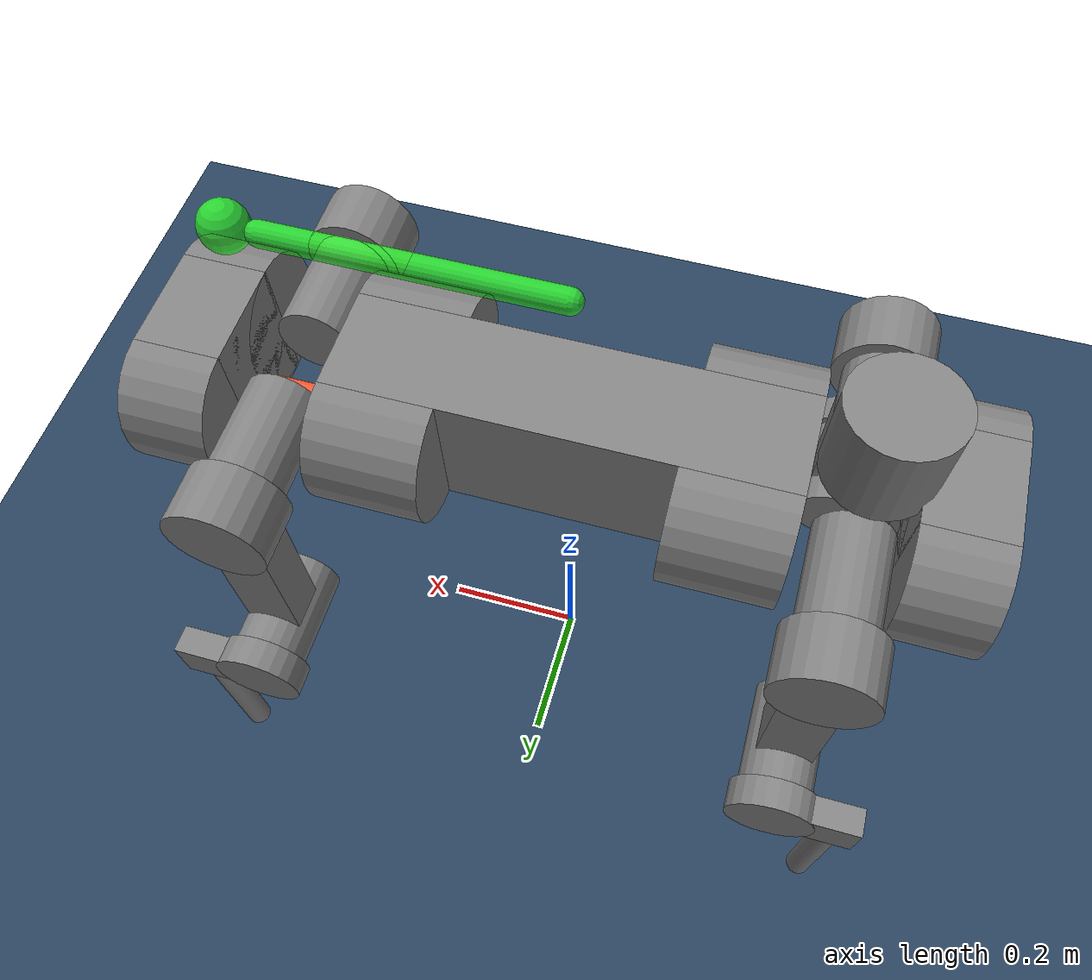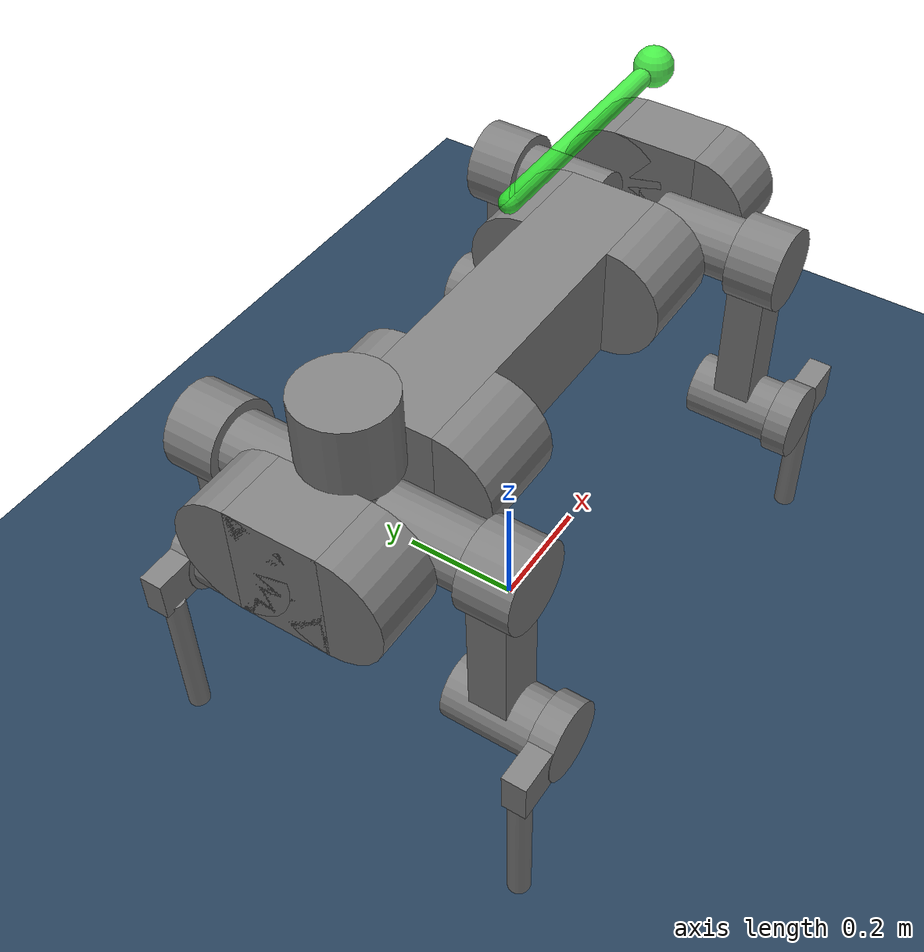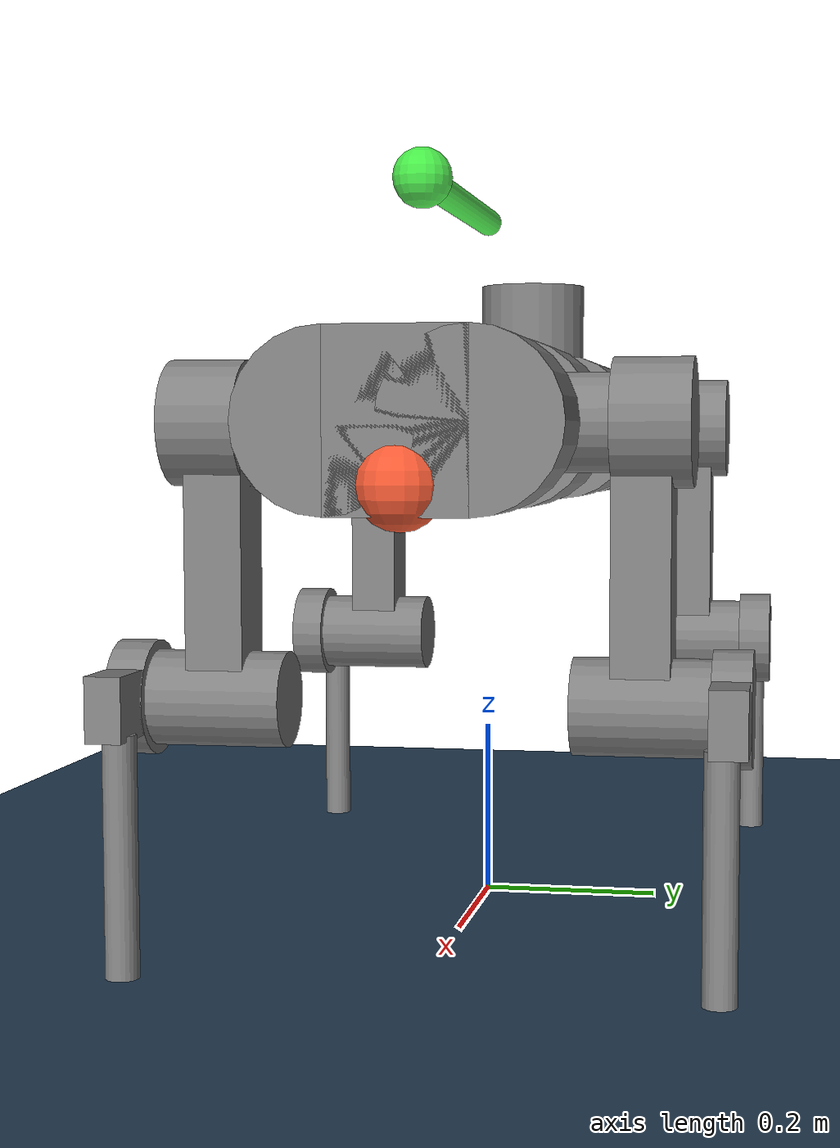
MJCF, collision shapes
<mujoco model="anymal_c_navigation_scene">
    <include file="anymal_c.xml"/>

    <option timestep="0.01" iterations="50" solver="Newton" tolerance="1e-10"/>

    <statistic center="0 0 0.5" extent="2"/>

    <visual>
        <headlight diffuse="0.6 0.6 0.6" ambient="0.3 0.3 0.3" specular="0 0 0"/>
        <rgba haze="0.15 0.25 0.35 1"/>
        <global azimuth="120" elevation="-20"/>
    </visual>

    <asset>
        <texture type="2d" name="groundplane" builtin="checker" mark="edge"
                 rgb1="0.2 0.3 0.4" rgb2="0.1 0.2 0.3" markrgb="0.8 0.8 0.8"
                 width="300" height="300"/>
        <material name="groundplane" texture="groundplane" texuniform="true" texrepeat="5 5" reflectance="0.2"/>
        <material name="target_arrow_mat" rgba="0.95 0.35 0.20 0.90"/>
        <material name="desired_arrow_mat" rgba="0.10 0.75 0.95 0.85"/>
        <material name="robot_arrow_mat" rgba="0.20 0.95 0.20 0.85"/>
    </asset>

    <worldbody>
        <light pos="0 0 1.5" dir="0 0 -1" directional="true" castshadow="false"/>

        <geom name="floor" size="0 0 0.05" type="plane" material="groundplane" friction="1 0.005 0.0001"/>

        <!-- Navigation target marker (mocap body updated by environment code) -->
        <body name="target_marker" mocap="true" pos="0 0 0.5">
            <geom type="capsule" fromto="0 0 0 0.45 0 0" size="0.020"
                  contype="0" conaffinity="0" material="target_arrow_mat"/>
            <geom type="sphere" pos="0.50 0 0" size="0.045"
                  contype="0" conaffinity="0" material="target_arrow_mat"/>
        </body>

        <!-- Robot current heading arrow (derived from actual XY velocity direction) -->
        <body name="robot_heading_arrow" mocap="true" pos="0 0 0.8">
            <geom type="capsule" fromto="0 0 0 0.35 0 0" size="0.015"
                  contype="0" conaffinity="0" material="robot_arrow_mat"/>
            <geom type="sphere" pos="0.39 0 0" size="0.030"
                  contype="0" conaffinity="0" material="robot_arrow_mat"/>
        </body>

        <!-- Desired heading arrow (derived from navigation controller command) -->
        <body name="desired_heading_arrow" mocap="true" pos="0 0 0.8">
            <geom type="capsule" fromto="0 0 0 0.35 0 0" size="0.012"
                  contype="0" conaffinity="0" material="desired_arrow_mat"/>
            <geom type="sphere" pos="0.39 0 0" size="0.028"
                  contype="0" conaffinity="0" material="desired_arrow_mat"/>
        </body>
    </worldbody>

</mujoco>

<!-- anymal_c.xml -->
<mujoco model="anymal_c">
  <compiler angle="radian" meshdir="assets" texturedir="assets" autolimits="true"/>

  <option cone="elliptic" impratio="100"/>

  <default>
    <material specular="0" shininess="0.25"/>
    <default class="anymal_c">
      <joint damping="1" frictionloss="0.1"/>

      <default class="visual">
        <geom type="mesh" contype="0" conaffinity="0" group="2"/>
        <default class="visual_zflip">
          <geom quat="0 0 0 1"/>
        </default>
      </default>
      <default class="collision">
        <geom group="3" type="cylinder"/>
        <default class="foot">
          <geom type="sphere" size="0.03" pos="0 0 0.02325" priority="1" solimp="0.015 1 0.03" condim="6"
            friction="0.8 0.02 0.01"/>
        </default>
      </default>

      <default class="affine">
        <position kp="200" kv="1" ctrlrange="-6.28 6.28" forcerange="-140 140"/>
      </default>
    </default>
  </default>

  <asset>
    <material name="black_plastic" rgba="0.007 0.007 0.007 1"/>
    <material name="green" rgba="0.052 0.178 0.033 1"/>
    <material name="red" rgba="0.178 0.006 0.005 1"/>
    <material name="yellow" rgba="0.178 0.119 0.006 1"/>
    <material name="lwl" rgba="0.8 0.8 0.8 1"/>
    <material name="base" texture="base"/>
    <material name="top_shell" texture="top_shell"/>
    <material name="bottom_shell" texture="bottom_shell"/>
    <material name="hip_l" texture="hip_l"/>
    <material name="thigh" texture="thigh"/>
    <material name="shank_l" texture="shank_l"/>
    <material name="foot" texture="foot"/>
    <material name="hip_r" texture="hip_r"/>
    <material name="shank" texture="shank_r"/>
    <material name="hatch" texture="hatch"/>
    <material name="remote" texture="remote"/>
    <material name="handle" texture="handle"/>
    <material name="face" texture="face"/>
    <material name="depth_camera" texture="depth_camera"/>
    <material name="wide_angle_camera" texture="wide_angle_camera"/>
    <material name="battery" texture="battery"/>
    <material name="lidar_cage" texture="lidar_cage"/>
    <material name="lidar" texture="lidar"/>
    <material name="drive" texture="drive"/>

    <texture type="2d" name="base" file="base.png"/>
    <texture type="2d" name="top_shell" file="top_shell.png"/>
    <texture type="2d" name="bottom_shell" file="bottom_shell.png"/>
    <texture type="2d" name="remote" file="remote.png"/>
    <texture type="2d" name="hatch" file="hatch.png"/>
    <texture type="2d" name="handle" file="handle.png"/>
    <texture type="2d" name="face" file="face.png"/>
    <texture type="2d" name="battery" file="battery.png"/>
    <texture type="2d" name="lidar_cage" file="lidar_cage.png"/>
    <texture type="2d" name="depth_camera" file="depth_camera.png"/>
    <texture type="2d" name="wide_angle_camera" file="wide_angle_camera.png"/>
    <texture type="2d" name="lidar" file="lidar.png"/>
    <texture type="2d" name="drive" file="drive.png"/>
    <texture type="2d" name="hip_l" file="hip_l.png"/>
    <texture type="2d" name="shank_l" file="shank_l.png"/>
    <texture type="2d" name="foot" file="foot.png"/>
    <texture type="2d" name="thigh" file="thigh.png"/>
    <texture type="2d" name="shank_r" file="shank_r.png"/>
    <texture type="2d" name="hip_r" file="hip_r.png"/>

    <mesh file="base_0.obj"/>
    <mesh file="base_1.obj"/>
    <mesh file="base_2.obj"/>
    <mesh file="base_3.obj"/>
    <mesh file="base_4.obj"/>
    <mesh file="base_5.obj"/>
    <mesh file="top_shell.obj"/>
    <mesh file="bottom_shell.obj"/>
    <mesh file="remote.obj"/>
    <mesh file="handle.obj"/>
    <mesh file="face.obj"/>
    <mesh file="wide_angle_camera.obj"/>
    <mesh file="depth_camera.obj"/>
    <mesh file="battery.obj"/>
    <mesh file="lidar_cage.obj"/>
    <mesh file="lidar.obj"/>
    <mesh file="drive.obj"/>
    <mesh file="hip_l.obj"/>
    <mesh file="thigh.obj"/>
    <mesh file="shank_l.obj"/>
    <mesh file="foot.obj"/>
    <mesh file="hip_r.obj"/>
    <mesh file="hatch.obj"/>
    <mesh file="shank_r.obj"/>
  </asset>

  <worldbody>
    <light name="spotlight" mode="targetbodycom" target="base" pos="0 -1 2" cutoff="30"/>
    <body name="base" pos="0 0 0.56" quat="1 0 0 0" childclass="anymal_c">
      <freejoint/>
      <inertial mass="19.2035" pos="0.0025 0 0.0502071" quat="0.5 0.5 0.5 0.5" diaginertia="0.639559 0.624031 0.217374"/>

      <!-- IMU sensor -->
      <site name="imu_site" pos="0 0 0" size="0.01"/>

      <geom mesh="base_0" material="green" class="visual"/>
      <geom mesh="base_1" material="yellow" class="visual"/>
      <geom mesh="base_2" material="red" class="visual"/>
      <geom mesh="base_3" material="black_plastic" class="visual"/>
      <geom mesh="base_4" material="lwl" class="visual"/>
      <geom mesh="base_5" material="base" class="visual"/>
      <geom name="base" class="collision" size="0.29 0.07 0.09" type="box"/>
      <geom class="collision" size="0.09 0.0725" pos="0.2175 0.07 0" quat="1 0 1 0"/>
      <geom class="collision" size="0.09 0.0725" pos="-0.2175 0.07 0" quat="1 0 1 0"/>
      <geom class="collision" size="0.09 0.0725" pos="0.2175 -0.07 0" quat="1 0 1 0"/>
      <geom class="collision" size="0.09 0.0725" pos="-0.2175 -0.07 0" quat="1 0 1 0"/>
      <geom material="top_shell" mesh="top_shell" class="visual"/>
      <geom material="bottom_shell" mesh="bottom_shell" class="visual"/>
      <geom material="remote" mesh="remote" class="visual"/>
      <geom material="handle" mesh="handle" class="visual"/>
      <geom pos="0.4145 0 0" material="face" mesh="face" class="visual"/>
      <geom class="collision" size="0.055 0.07 0.09" pos="0.4695 0 0" type="box"/>
      <geom class="collision" size="0.09 0.055" pos="0.4695 0.07 0" quat="1 0 1 0"/>
      <geom class="collision" size="0.09 0.055" pos="0.4695 -0.07 0" quat="1 0 1 0"/>
      <geom pos="0.46165 0 -0.0292" quat="0.965926 0 0.258819 0" material="depth_camera" mesh="depth_camera"
        class="visual"/>
      <geom pos="0.513 0 0.01497" material="wide_angle_camera" mesh="wide_angle_camera" class="visual"/>
      <geom pos="-0.4145 0 0" material="face" mesh="face" class="visual_zflip"/>
      <geom class="collision" size="0.055 0.07 0.09" pos="-0.4695 0 0" quat="0 0 0 1" type="box"/>
      <geom class="collision" size="0.09 0.055" pos="-0.4695 -0.07 0" quat="0 -1 0 1"/>
      <geom class="collision" size="0.09 0.055" pos="-0.4695 0.07 0" quat="0 -1 0 1"/>
      <geom pos="-0.46165 0 -0.0292" quat="0 -0.258819 0 0.965926" material="depth_camera" mesh="depth_camera"
        class="visual"/>
      <geom pos="-0.513 0 0.01497" material="wide_angle_camera" mesh="wide_angle_camera" class="visual_zflip"/>
      <geom material="battery" mesh="battery" class="visual"/>
      <geom pos="0 0.07646 0.02905" quat="0.683013 -0.183013 0.183013 0.683013" material="depth_camera"
        mesh="depth_camera" class="visual"/>
      <geom pos="0 -0.07646 0.02905" quat="0.683013 0.183013 0.183013 -0.683013" material="depth_camera"
        mesh="depth_camera" class="visual"/>
      <geom pos="-0.364 0 0.0735" material="lidar_cage" mesh="lidar_cage" class="visual"/>
      <geom class="collision" size="0.07 0.06" pos="-0.364 0 0.1335"/>
      <geom pos="-0.364 0 0.1422" quat="1 0 0 -1" material="lidar" mesh="lidar" class="visual"/>
      <geom pos="0.2999 0.104 0" quat="0.258819 0.965926 0 0" material="drive" mesh="drive" class="visual"/>
      <geom pos="0.2999 -0.104 0" quat="0.258819 -0.965926 0 0" material="drive" mesh="drive" class="visual"/>
      <geom pos="-0.2999 0.104 0" quat="0 0 0.965926 -0.258819" material="drive" mesh="drive" class="visual"/>
      <geom pos="-0.2999 -0.104 0" quat="0 0 -0.965926 -0.258819" material="drive" mesh="drive" class="visual"/>
      <geom pos="0.116 0 0.073" material="hatch" mesh="hatch" class="visual"/>
      <body name="LF_HIP" pos="0.2999 0.104 0" quat="0.258819 0.965926 0 0">
        <inertial mass="2.781" pos="0.0566606 -0.015294 -0.00829784" quat="-0.127978 0.709783 -0.135278 0.679359"
          diaginertia="0.00585729 0.00491868 0.00329081"/>
        <joint name="LF_HAA" axis="1 0 0" range="-0.72 0.49"/>
        <geom quat="0.258819 -0.965926 0 0" material="hip_l" mesh="hip_l" class="visual"/>
        <geom pos="0.0599 -0.0725816 -0.041905" quat="0.183013 -0.683013 0.683013 0.183013" material="drive"
          mesh="drive" class="visual"/>
        <geom class="collision" size="0.05 0.07" pos="0.0599 -0.0119598 -0.006905"
          quat="-0.353553 -0.612372 0.612372 -0.353553"/>
        <body name="LF_THIGH" pos="0.0599 -0.0725816 -0.041905" quat="0.183013 -0.683013 0.683013 0.183013">
          <inertial mass="3.071" pos="0.0308147 4.64995e-05 -0.245696" quat="0.993166 -0.00515309 -0.0806592 0.0841972"
            diaginertia="0.03025 0.0298943 0.00418465"/>
          <joint name="LF_HFE" axis="1 0 0" range="-9.42478 9.42478"/>
          <geom quat="1 0 0 -1" material="thigh" mesh="thigh" class="visual"/>
          <geom class="collision" size="0.065 0.04" pos="0.04 0 0" quat="0.5 0.5 -0.5 -0.5"/>
          <geom class="collision" size="0.0375 0.03 0.141314" pos="0.03 0 -0.141314" quat="1 0 0 -1" type="box"/>
          <geom pos="0.1003 0 -0.285" material="drive" mesh="drive" class="visual"/>
          <geom class="collision" size="0.05 0.07" pos="0.0303 0 -0.285" quat="1 0 1 0"/>
          <body name="LF_SHANK" pos="0.1003 0 -0.285">
            <inertial mass="0.58842" pos="0.005462 -0.0612528 -0.0806598"
              quat="0.992934 -0.115904 -0.00105487 -0.0254421" diaginertia="0.0101637 0.00923838 0.00111927"/>
            <joint name="LF_KFE" axis="1 0 0" range="-9.42478 9.42478"/>
            <geom quat="1 0 0 -1" material="shank_l" mesh="shank_l" class="visual"/>
            <geom class="collision" size="0.06 0.02" pos="0.02 0 0" quat="0.5 0.5 -0.5 -0.5"/>
            <geom class="collision" size="0.057499 0.03375 0.019" pos="0.02 -0.057499 0" quat="0.5 0.5 -0.5 -0.5"
              type="box"/>
            <geom pos="0.01305 -0.08795 -0.33797" quat="0.382683 0 0 -0.92388" material="foot" mesh="foot"
              class="visual"/>
            <geom class="collision" size="0.0175 0.141252" pos="0.01305 -0.08795 -0.168985" quat="1 0 0 -1"/>
            <geom name="LF_FOOT" class="foot" pos="0.01305 -0.08795 -0.31547" quat="1 0 0 -1"/>
          </body>
        </body>
      </body>
      <body name="RF_HIP" pos="0.2999 -0.104 0" quat="0.258819 -0.965926 0 0">
        <inertial mass="2.781" pos="0.0567633 0.015294 -0.00829784" quat="0.13524 0.679072 0.127985 0.710065"
          diaginertia="0.00585928 0.0049205 0.00329064"/>
        <joint name="RF_HAA" axis="1 0 0" range="-0.49 0.72"/>
        <geom quat="0.258819 0.965926 0 0" material="hip_r" mesh="hip_r" class="visual"/>
        <geom pos="0.0599 0.0725816 -0.041905" quat="0.183013 0.683013 0.683013 -0.183013" material="drive" mesh="drive"
          class="visual"/>
        <geom class="collision" size="0.05 0.07" pos="0.0599 0.0119598 -0.006905"
          quat="-0.353553 0.612372 0.612372 0.353553"/>
        <body name="RF_THIGH" pos="0.0599 0.0725816 -0.041905" quat="0.183013 0.683013 0.683013 -0.183013">
          <inertial mass="3.071" pos="0.0308147 4.64995e-05 -0.245696" quat="0.992775 -0.00512735 -0.0806685 0.0886811"
            diaginertia="0.0302511 0.0298933 0.0041845"/>
          <joint name="RF_HFE" axis="-1 0 0" range="-9.42478 9.42478"/>
          <geom quat="1 0 0 -1" material="thigh" mesh="thigh" class="visual"/>
          <geom class="collision" size="0.065 0.04" pos="0.04 0 0" quat="0.5 0.5 0.5 0.5"/>
          <geom class="collision" size="0.0375 0.03 0.141314" pos="0.03 0 -0.141314" quat="1 0 0 1" type="box"/>
          <geom pos="0.1003 0 -0.285" material="drive" mesh="drive" class="visual"/>
          <geom class="collision" size="0.05 0.07" pos="0.0303 0 -0.285" quat="1 0 1 0"/>
          <body name="RF_SHANK" pos="0.1003 0 -0.285">
            <inertial mass="0.58842" pos="0.005462 0.0612528 -0.0806598" quat="0.992934 0.115904 -0.00105487 0.0254421"
              diaginertia="0.0101637 0.00923838 0.00111927"/>
            <joint name="RF_KFE" axis="-1 0 0" range="-9.42478 9.42478"/>
            <geom quat="1 0 0 1" material="shank" mesh="shank_r" class="visual"/>
            <geom class="collision" size="0.06 0.02" pos="0.02 0 0" quat="0.5 0.5 0.5 0.5"/>
            <geom class="collision" size="0.057499 0.03375 0.019" pos="0.02 0.057499 0" quat="0.5 0.5 0.5 0.5"
              type="box"/>
            <geom pos="0.01305 0.08795 -0.33797" quat="0.382683 0 0 0.92388" material="foot" mesh="foot" class="visual"/>
            <geom class="collision" size="0.0175 0.141252" pos="0.01305 0.08795 -0.168985" quat="1 0 0 1"/>
            <geom name="RF_FOOT" class="foot" pos="0.01305 0.08795 -0.31547" quat="1 0 0 1"/>
          </body>
        </body>
      </body>
      <body name="LH_HIP" pos="-0.2999 0.104 0" quat="0 0 0.965926 -0.258819">
        <inertial mass="2.781" pos="0.0567633 0.015294 -0.00829784" quat="0.13524 0.679072 0.127985 0.710065"
          diaginertia="0.00585928 0.0049205 0.00329064"/>
        <joint name="LH_HAA" axis="-1 0 0" range="-0.72 0.49"/>
        <geom quat="-0.258819 -0.965926 0 0" material="hip_r" mesh="hip_r" class="visual"/>
        <geom pos="0.0599 0.0725816 -0.041905" quat="0.183013 0.683013 0.683013 -0.183013" material="drive" mesh="drive"
          class="visual"/>
        <geom class="collision" size="0.05 0.07" pos="0.0599 0.0119598 -0.006905"
          quat="-0.353553 0.612372 0.612372 0.353553"/>
        <body name="LH_THIGH" pos="0.0599 0.0725816 -0.041905" quat="0.183013 0.683013 0.683013 -0.183013">
          <inertial mass="3.071" pos="0.0308147 4.64995e-05 -0.245696" quat="0.992775 -0.00512735 -0.0806685 0.0886811"
            diaginertia="0.0302511 0.0298933 0.0041845"/>
          <joint name="LH_HFE" axis="1 0 0" range="-9.42478 9.42478"/>
          <geom quat="1 0 0 -1" material="thigh" mesh="thigh" class="visual"/>
          <geom class="collision" size="0.065 0.04" pos="0.04 0 0" quat="0.5 0.5 -0.5 -0.5"/>
          <geom class="collision" size="0.0375 0.03 0.141314" pos="0.03 0 -0.141314" quat="1 0 0 -1" type="box"/>
          <geom pos="0.1003 0 -0.285" material="drive" mesh="drive" class="visual"/>
          <geom class="collision" size="0.05 0.07" pos="0.0303 0 -0.285" quat="1 0 1 0"/>
          <body name="LH_SHANK" pos="0.1003 0 -0.285">
            <inertial mass="0.58842" pos="0.005462 0.0612528 -0.0806598" quat="0.992934 0.115904 -0.00105487 0.0254421"
              diaginertia="0.0101637 0.00923838 0.00111927"/>
            <joint name="LH_KFE" axis="1 0 0" range="-9.42478 9.42478"/>
            <geom quat="-1 0 0 -1" material="shank" mesh="shank_r" class="visual"/>
            <geom class="collision" size="0.06 0.02" pos="0.02 0 0" quat="0.5 0.5 -0.5 -0.5"/>
            <geom class="collision" size="0.057499 0.03375 0.019" pos="0.02 0.057499 0" quat="0.5 0.5 -0.5 -0.5"
              type="box"/>
            <geom pos="0.01305 0.08795 -0.33797" quat="-0.382683 0 0 -0.92388" material="foot" mesh="foot"
              class="visual"/>
            <geom class="collision" size="0.0175 0.141252" pos="0.01305 0.08795 -0.168985" quat="1 0 0 -1"/>
            <geom name="LH_FOOT" class="foot" pos="0.01305 0.08795 -0.31547" quat="1 0 0 -1"/>
          </body>
        </body>
      </body>
      <body name="RH_HIP" pos="-0.2999 -0.104 0" quat="0 0 -0.965926 -0.258819">
        <inertial mass="2.781" pos="0.0566606 -0.015294 -0.00829784" quat="-0.127978 0.709783 -0.135278 0.679359"
          diaginertia="0.00585729 0.00491868 0.00329081"/>
        <joint name="RH_HAA" axis="-1 0 0" range="-0.49 0.72"/>
        <geom quat="-0.258819 0.965926 0 0" material="hip_l" mesh="hip_l" class="visual"/>
        <geom pos="0.0599 -0.0725816 -0.041905" quat="-0.183013 0.683013 -0.683013 -0.183013" material="drive"
          mesh="drive" class="visual"/>
        <geom class="collision" size="0.05 0.07" pos="0.0599 -0.0119598 -0.006905"
          quat="0.353553 0.612372 -0.612372 0.353553"/>
        <body name="RH_THIGH" pos="0.0599 -0.0725816 -0.041905" quat="-0.183013 0.683013 -0.683013 -0.183013">
          <inertial mass="3.071" pos="0.0308147 4.64995e-05 -0.245696" quat="0.993166 -0.00515309 -0.0806592 0.0841972"
            diaginertia="0.03025 0.0298943 0.00418465"/>
          <joint name="RH_HFE" axis="-1 0 0" range="-9.42478 9.42478"/>
          <geom quat="1 0 0 -1" material="thigh" mesh="thigh" class="visual"/>
          <geom class="collision" size="0.065 0.04" pos="0.04 0 0" quat="0.5 0.5 0.5 0.5"/>
          <geom class="collision" size="0.0375 0.03 0.141314" pos="0.03 0 -0.141314" quat="1 0 0 1" type="box"/>
          <geom pos="0.1003 0 -0.285" material="drive" mesh="drive" class="visual"/>
          <geom class="collision" size="0.05 0.07" pos="0.0303 0 -0.285" quat="1 0 1 0"/>
          <body name="RH_SHANK" pos="0.1003 0 -0.285">
            <inertial mass="0.58842" pos="0.005462 -0.0612528 -0.0806598"
              quat="0.992934 -0.115904 -0.00105487 -0.0254421" diaginertia="0.0101637 0.00923838 0.00111927"/>
            <joint name="RH_KFE" axis="-1 0 0" range="-9.42478 9.42478"/>
            <geom quat="1 0 0 -1" material="shank_l" mesh="shank_l" class="visual"/>
            <geom class="collision" size="0.06 0.02" pos="0.02 0 0" quat="0.5 0.5 0.5 0.5"/>
            <geom class="collision" size="0.057499 0.03375 0.019" pos="0.02 -0.057499 0" quat="0.5 0.5 0.5 0.5"
              type="box"/>
            <geom pos="0.01305 -0.08795 -0.33797" quat="0.382683 0 0 -0.92388" material="foot" mesh="foot"
              class="visual"/>
            <geom class="collision" size="0.0175 0.141252" pos="0.01305 -0.08795 -0.168985" quat="1 0 0 1"/>
            <geom name="RH_FOOT" class="foot" pos="0.01305 -0.08795 -0.31547" quat="1 0 0 1"/>
          </body>
        </body>
      </body>
    </body>
  </worldbody>

  <contact>
    <exclude body1="base" body2="LF_THIGH"/>
    <exclude body1="base" body2="RF_THIGH"/>
    <exclude body1="base" body2="LH_THIGH"/>
    <exclude body1="base" body2="RH_THIGH"/>
  </contact>

  <sensor>
    <framelinvel name="base_linvel" objtype="body" objname="base"/>
    <gyro name="base_gyro" site="imu_site"/>
  </sensor>

  <actuator>
    <position class="affine" joint="LF_HAA" name="LF_HAA"/>
    <position class="affine" joint="LF_HFE" name="LF_HFE"/>
    <position class="affine" joint="LF_KFE" name="LF_KFE"/>
    <position class="affine" joint="RF_HAA" name="RF_HAA"/>
    <position class="affine" joint="RF_HFE" name="RF_HFE"/>
    <position class="affine" joint="RF_KFE" name="RF_KFE"/>
    <position class="affine" joint="LH_HAA" name="LH_HAA"/>
    <position class="affine" joint="LH_HFE" name="LH_HFE"/>
    <position class="affine" joint="LH_KFE" name="LH_KFE"/>
    <position class="affine" joint="RH_HAA" name="RH_HAA"/>
    <position class="affine" joint="RH_HFE" name="RH_HFE"/>
    <position class="affine" joint="RH_KFE" name="RH_KFE"/>
  </actuator>
</mujoco>
